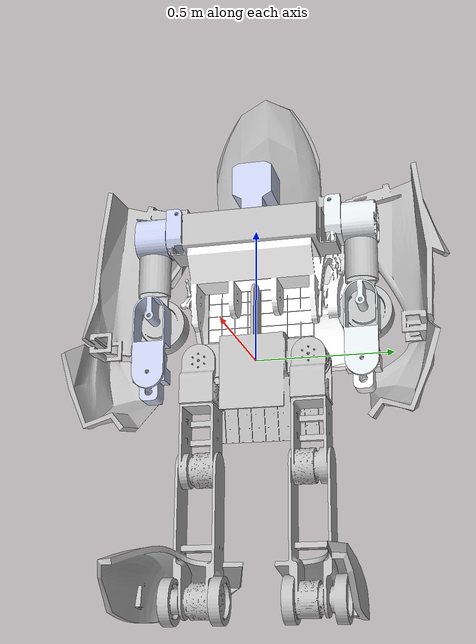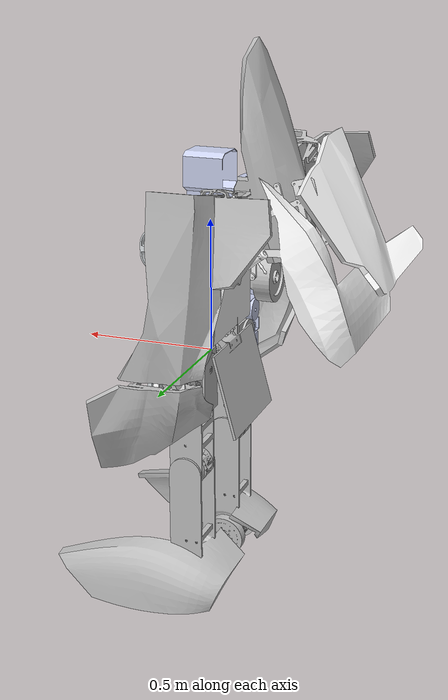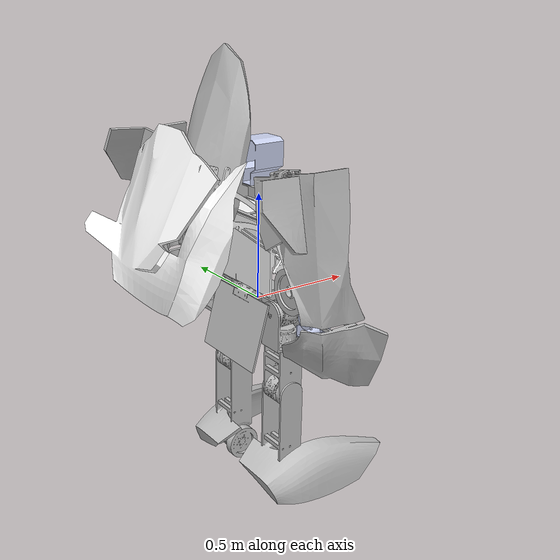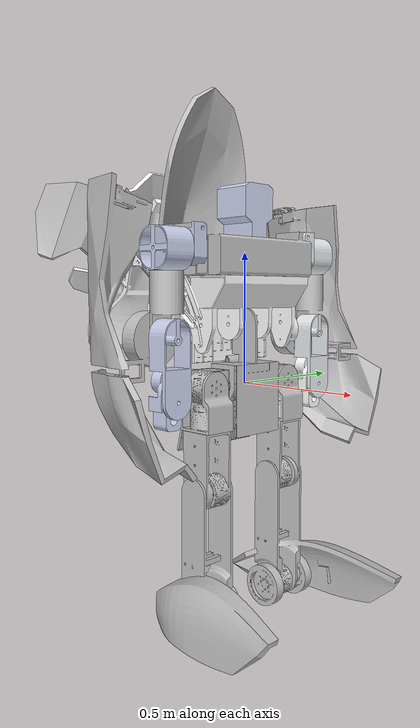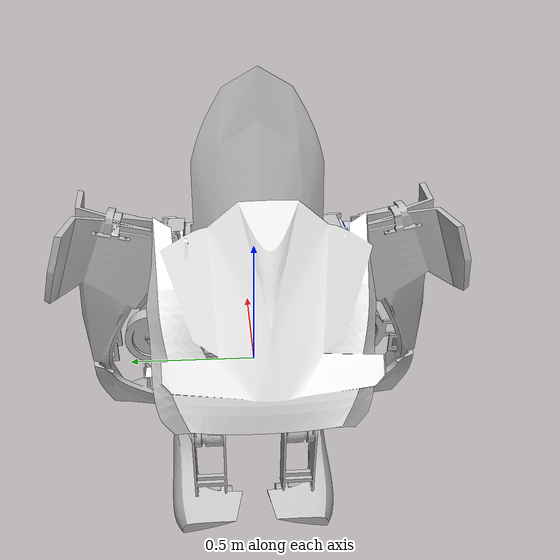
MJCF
<?xml version='1.0' encoding='UTF-8'?>
<mujoco model="u20">
  <compiler angle="radian" meshdir="../meshes/" autolimits="true" discardvisual="false"/>
  <default>
    <joint damping="0.5" armature="0.01" frictionloss="0.1"/>
    <geom group="3" contype="1" conaffinity="1"/>
  </default>
  <asset>
    <mesh name="base_link" content_type="model/stl" file="base_link.STL"/>
    <mesh name="lleg1_link" content_type="model/stl" file="lleg1_link.STL"/>
    <mesh name="lleg2_link" content_type="model/stl" file="lleg2_link.STL"/>
    <mesh name="lleg3_link" content_type="model/stl" file="lleg3_link.STL"/>
    <mesh name="lleg4_link" content_type="model/stl" file="lleg4_link.STL"/>
    <mesh name="lleg5_link" content_type="model/stl" file="lleg5_link.STL"/>
    <mesh name="rleg1_link" content_type="model/stl" file="rleg1_link.STL"/>
    <mesh name="rleg2_link" content_type="model/stl" file="rleg2_link.STL"/>
    <mesh name="rleg3_link" content_type="model/stl" file="rleg3_link.STL"/>
    <mesh name="rleg4_link" content_type="model/stl" file="rleg4_link.STL"/>
    <mesh name="rleg5_link" content_type="model/stl" file="rleg5_link.STL"/>
    <mesh name="waist1_link" content_type="model/stl" file="waist1_link.STL"/>
    <mesh name="waist2_link" content_type="model/stl" file="waist2_link.STL"/>
    <mesh name="head_link" content_type="model/stl" file="head_link.STL"/>
    <mesh name="larm1_link" content_type="model/stl" file="larm1_link.STL"/>
    <mesh name="larm2_link" content_type="model/stl" file="larm2_link.STL"/>
    <mesh name="larm3_link" content_type="model/stl" file="larm3_link.STL"/>
    <mesh name="larm4_link" content_type="model/stl" file="larm4_link.STL"/>
    <mesh name="larm5_link" content_type="model/stl" file="larm5_link.STL"/>
    <mesh name="larm6_link" content_type="model/stl" file="larm6_link.STL"/>
    <mesh name="rarm1_link" content_type="model/stl" file="rarm1_link.STL"/>
    <mesh name="rarm2_link" content_type="model/stl" file="rarm2_link.STL"/>
    <mesh name="rarm3_link" content_type="model/stl" file="rarm3_link.STL"/>
    <mesh name="rarm4_link" content_type="model/stl" file="rarm4_link.STL"/>
    <mesh name="rarm5_link" content_type="model/stl" file="rarm5_link.STL"/>
    <mesh name="rarm6_link" content_type="model/stl" file="rarm6_link.STL"/>
  </asset>
  <worldbody>
    <body name="base_link">
      <inertial pos="-0.0094 0 0.0157" quat="0.699653 0.699653 -0.1024 0.1024" mass="7.5069" diaginertia="0.095222 0.062078 0.0597"/>
      <joint name="floating_base_joint" type="free" limited="false" actuatorfrclimited="false"/>
      <geom type="mesh" contype="0" conaffinity="0" group="1" density="0" rgba="0.75294 0.75294 0.75294 1" mesh="base_link"/>
      <geom size="0.075 0.125 0.05" type="box" rgba="0.75294 0.75294 0.75294 1"/>
      <site name="imu" size="0.01" pos="0 0 0"/>
      <body name="left_hip_pitch_link" pos="0 0.12 0">
        <inertial pos="-0.002 0.0686 0" quat="0.466387 0.531491 -0.466387 0.531491" mass="2.9727" diaginertia="0.0042 0.00412621 0.00257379"/>
        <joint name="left_hip_pitch_joint" pos="0 0 0" axis="0 1 0" range="-1.4 1.4" actuatorfrcrange="-200 200"/>
        <geom type="mesh" contype="0" conaffinity="0" group="1" density="0" rgba="0.752941 0.752941 0.752941 1" mesh="lleg1_link"/>
        <body name="left_hip_roll_link" pos="0 0.081 0">
          <inertial pos="0.0005 0 -0.0962" quat="0.705299 0.0505241 0.0505241 0.705299" mass="4.1429" diaginertia="0.0187 0.013772 0.010228"/>
          <joint name="left_hip_roll_joint" pos="0 0 0" axis="1 0 0" range="-0.05 1.4" actuatorfrcrange="-200 200"/>
          <geom type="mesh" contype="0" conaffinity="0" group="1" density="0" rgba="0.752941 0.752941 0.752941 1" mesh="lleg2_link"/>
          <geom size="0.06" rgba="0.752941 0.752941 0.752941 1"/>
          <body name="left_hip_yaw_link" pos="0.001 0 -0.16">
            <inertial pos="-0.0009 -0.0016 -0.1771" quat="0.999941 0.00888636 0.00613785 -0.000736512" mass="5.0688" diaginertia="0.0448049 0.0403089 0.0121862"/>
            <joint name="left_hip_yaw_joint" pos="0 0 0" axis="0 0 1" range="-0.5 0.5" actuatorfrcrange="-200 200"/>
            <geom type="mesh" contype="0" conaffinity="0" group="1" density="0" rgba="0.752941 0.752941 0.752941 1" mesh="lleg3_link"/>
            <geom size="0.05 0.04" pos="0 0 -0.05" type="capsule" rgba="0.752941 0.752941 0.752941 1"/>
            <body name="left_knee_link" pos="0 0 -0.231">
              <inertial pos="0.0068 0.0062 -0.3113" quat="0.933301 -0.0101985 0.0160484 0.358591" mass="6.9416" diaginertia="0.207974 0.187249 0.0534778"/>
              <joint name="left_knee_joint" pos="0 0 0" axis="0 1 0" range="-0.1 2.3" actuatorfrcrange="-200 200"/>
              <geom type="mesh" contype="0" conaffinity="0" group="1" density="0" rgba="0.752941 0.752941 0.752941 1" mesh="lleg4_link"/>
              <geom size="0.05 0.14" pos="0 0 -0.16" type="capsule" rgba="0.752941 0.752941 0.752941 1"/>
              <body name="left_foot_link" pos="0 0 -0.45">
                <inertial pos="0 0.017 0" quat="0.707107 0.707107 0 0" mass="7.7653" diaginertia="0.075 0.075 0.0327"/>
                <geom type="mesh" contype="0" conaffinity="0" group="1" density="0" rgba="0.752941 0.752941 0.752941 1" mesh="lleg5_link"/>
                <geom name="left_foot1f_collision" size="0.012 0.033379" pos="0.085 0.067 0" quat="0.707107 0.707107 0 0" type="capsule" priority="1" friction="0.6 0.005 0.0001" rgba="0.2 0.2 0.2 1"/>
                <geom name="left_foot2f_collision" size="0.012 0.033379" pos="0.060104 0.067 0.060104" quat="0.707107 0.707107 0 0" type="capsule" priority="1" friction="0.6 0.005 0.0001" rgba="0.2 0.2 0.2 1"/>
                <geom name="left_foot3f_collision" size="0.012 0.033379" pos="0 0.067 0.085" quat="0.707107 0.707107 0 0" type="capsule" priority="1" friction="0.6 0.005 0.0001" rgba="0.2 0.2 0.2 1"/>
                <geom name="left_foot4f_collision" size="0.012 0.033379" pos="-0.060104 0.067 0.060104" quat="0.707107 0.707107 0 0" type="capsule" priority="1" friction="0.6 0.005 0.0001" rgba="0.2 0.2 0.2 1"/>
                <geom name="left_foot5f_collision" size="0.012 0.033379" pos="-0.085 0.067 0" quat="0.707107 0.707107 0 0" type="capsule" priority="1" friction="0.6 0.005 0.0001" rgba="0.2 0.2 0.2 1"/>
                <geom name="left_foot6f_collision" size="0.012 0.033379" pos="-0.060104 0.067 -0.060104" quat="0.707107 0.707107 0 0" type="capsule" priority="1" friction="0.6 0.005 0.0001" rgba="0.2 0.2 0.2 1"/>
                <geom name="left_foot7f_collision" size="0.012 0.033379" pos="0 0.067 -0.085" quat="0.707107 0.707107 0 0" type="capsule" priority="1" friction="0.6 0.005 0.0001" rgba="0.2 0.2 0.2 1"/>
                <geom name="left_foot8f_collision" size="0.012 0.033379" pos="0.060104 0.067 -0.060104" quat="0.707107 0.707107 0 0" type="capsule" priority="1" friction="0.6 0.005 0.0001" rgba="0.2 0.2 0.2 1"/>
                <geom name="left_foot1b2_collision" size="0.012 0.033379" pos="0.285 -0.033 0" quat="0.707107 0.707107 0 0" type="capsule" priority="1" friction="0.6 0.005 0.0001" rgba="0.2 0.2 0.2 1"/>
                <geom name="left_foot2b2_collision" size="0.012 0.033379" pos="0.260104 -0.033 0.060104" quat="0.707107 0.707107 0 0" type="capsule" priority="1" friction="0.6 0.005 0.0001" rgba="0.2 0.2 0.2 1"/>
                <geom name="left_foot3b2_collision" size="0.012 0.033379" pos="0.2 -0.033 0.085" quat="0.707107 0.707107 0 0" type="capsule" priority="1" friction="0.6 0.005 0.0001" rgba="0.2 0.2 0.2 1"/>
                <geom name="left_foot4b2_collision" size="0.012 0.033379" pos="0.139896 -0.033 0.060104" quat="0.707107 0.707107 0 0" type="capsule" priority="1" friction="0.6 0.005 0.0001" rgba="0.2 0.2 0.2 1"/>
                <geom name="left_foot5b2_collision" size="0.012 0.033379" pos="0.115 -0.033 0" quat="0.707107 0.707107 0 0" type="capsule" priority="1" friction="0.6 0.005 0.0001" rgba="0.2 0.2 0.2 1"/>
                <geom name="left_foot6b2_collision" size="0.012 0.033379" pos="0.139896 -0.033 -0.060104" quat="0.707107 0.707107 0 0" type="capsule" priority="1" friction="0.6 0.005 0.0001" rgba="0.2 0.2 0.2 1"/>
                <geom name="left_foot7b2_collision" size="0.012 0.033379" pos="0.2 -0.033 -0.085" quat="0.707107 0.707107 0 0" type="capsule" priority="1" friction="0.6 0.005 0.0001" rgba="0.2 0.2 0.2 1"/>
                <geom name="left_foot8b2_collision" size="0.012 0.033379" pos="0.260104 -0.033 -0.060104" quat="0.707107 0.707107 0 0" type="capsule" priority="1" friction="0.6 0.005 0.0001" rgba="0.2 0.2 0.2 1"/>
                <body name="LL_FOOT" pos="0.04 0 0">
                  <inertial pos="0 0 0" mass="1e-09" diaginertia="0 0 0"/>
                </body>
                <site name="left_foot" pos="0.04 0 0" size="0.01" rgba="1 0 0 1"/>
              </body>
            </body>
          </body>
        </body>
      </body>
      <body name="right_hip_pitch_link" pos="0 -0.12 0">
        <inertial pos="-0.002 -0.0686 0" quat="0.706662 0.706662 -0.0250788 -0.0250788" mass="2.9727" diaginertia="0.00931421 0.0082 0.00648579"/>
        <joint name="right_hip_pitch_joint" pos="0 0 0" axis="0 1 0" range="-1.4 1.4" actuatorfrcrange="-200 200"/>
        <geom type="mesh" contype="0" conaffinity="0" group="1" density="0" rgba="0.752941 0.752941 0.752941 1" mesh="rleg1_link"/>
        <body name="right_hip_roll_link" pos="0 -0.081 0">
          <inertial pos="0.0005 0 -0.0962" quat="0.703089 0.0752749 0.0752749 0.703089" mass="4.1429" diaginertia="0.0227 0.0178083 0.0153917"/>
          <joint name="right_hip_roll_joint" pos="0 0 0" axis="1 0 0" range="-1.4 0.05" actuatorfrcrange="-200 200"/>
          <geom type="mesh" contype="0" conaffinity="0" group="1" density="0" rgba="0.752941 0.752941 0.752941 1" mesh="rleg2_link"/>
          <geom size="0.06" rgba="0.752941 0.752941 0.752941 1"/>
          <body name="right_hip_yaw_link" pos="0.001 0 -0.16">
            <inertial pos="-0.0009 0.0016 -0.1771" quat="0.999944 -0.00852107 0.00613981 0.000982476" mass="5.0688" diaginertia="0.0488049 0.0455085 0.0161866"/>
            <joint name="right_hip_yaw_joint" pos="0 0 0" axis="0 0 1" range="-0.5 0.5" actuatorfrcrange="-200 200"/>
            <geom type="mesh" contype="0" conaffinity="0" group="1" density="0" rgba="0.752941 0.752941 0.752941 1" mesh="rleg3_link"/>
            <geom size="0.05 0.04" pos="0 0 -0.05" type="capsule" rgba="0.752941 0.752941 0.752941 1"/>
            <body name="right_knee_link" pos="0 0 -0.231">
              <inertial pos="0.0068 -0.0062 -0.3113" quat="0.927572 0.00982088 0.0161746 -0.373165" mass="6.9416" diaginertia="0.212476 0.191845 0.0574789"/>
              <joint name="right_knee_joint" pos="0 0 0" axis="0 1 0" range="-0.1 2.3" actuatorfrcrange="-200 200"/>
              <geom type="mesh" contype="0" conaffinity="0" group="1" density="0" rgba="0.752941 0.752941 0.752941 1" mesh="rleg4_link"/>
              <geom size="0.05 0.14" pos="0 0 -0.16" type="capsule" rgba="0.752941 0.752941 0.752941 1"/>
              <body name="right_foot_link" pos="0 0 -0.45">
                <inertial pos="0 -0.017 0" quat="0.707107 0.707107 0 0" mass="7.7653" diaginertia="0.075 0.075 0.0327"/>
                <geom type="mesh" contype="0" conaffinity="0" group="1" density="0" rgba="0.752941 0.752941 0.752941 1" mesh="rleg5_link"/>
                <geom name="right_foot1b_collision" size="0.012 0.033379" pos="0.085 -0.067 0" quat="0.707107 0.707107 0 0" type="capsule" priority="1" friction="0.6 0.005 0.0001" rgba="0.2 0.2 0.2 1"/>
                <geom name="right_foot2b_collision" size="0.012 0.033379" pos="0.060104 -0.067 0.060104" quat="0.707107 0.707107 0 0" type="capsule" priority="1" friction="0.6 0.005 0.0001" rgba="0.2 0.2 0.2 1"/>
                <geom name="right_foot3b_collision" size="0.012 0.033379" pos="0 -0.067 0.085" quat="0.707107 0.707107 0 0" type="capsule" priority="1" friction="0.6 0.005 0.0001" rgba="0.2 0.2 0.2 1"/>
                <geom name="right_foot4b_collision" size="0.012 0.033379" pos="-0.060104 -0.067 0.060104" quat="0.707107 0.707107 0 0" type="capsule" priority="1" friction="0.6 0.005 0.0001" rgba="0.2 0.2 0.2 1"/>
                <geom name="right_foot5b_collision" size="0.012 0.033379" pos="-0.085 -0.067 0" quat="0.707107 0.707107 0 0" type="capsule" priority="1" friction="0.6 0.005 0.0001" rgba="0.2 0.2 0.2 1"/>
                <geom name="right_foot6b_collision" size="0.012 0.033379" pos="-0.060104 -0.067 -0.060104" quat="0.707107 0.707107 0 0" type="capsule" priority="1" friction="0.6 0.005 0.0001" rgba="0.2 0.2 0.2 1"/>
                <geom name="right_foot7b_collision" size="0.012 0.033379" pos="0 -0.067 -0.085" quat="0.707107 0.707107 0 0" type="capsule" priority="1" friction="0.6 0.005 0.0001" rgba="0.2 0.2 0.2 1"/>
                <geom name="right_foot8b_collision" size="0.012 0.033379" pos="0.060104 -0.067 -0.060104" quat="0.707107 0.707107 0 0" type="capsule" priority="1" friction="0.6 0.005 0.0001" rgba="0.2 0.2 0.2 1"/>
                <geom name="right_foot1f2_collision" size="0.012 0.033379" pos="0.285 0.033 0" quat="0.707107 0.707107 0 0" type="capsule" priority="1" friction="0.6 0.005 0.0001" rgba="0.2 0.2 0.2 1"/>
                <geom name="right_foot2f2_collision" size="0.012 0.033379" pos="0.260104 0.033 0.060104" quat="0.707107 0.707107 0 0" type="capsule" priority="1" friction="0.6 0.005 0.0001" rgba="0.2 0.2 0.2 1"/>
                <geom name="right_foot3f2_collision" size="0.012 0.033379" pos="0.2 0.033 0.085" quat="0.707107 0.707107 0 0" type="capsule" priority="1" friction="0.6 0.005 0.0001" rgba="0.2 0.2 0.2 1"/>
                <geom name="right_foot4f2_collision" size="0.012 0.033379" pos="0.139896 0.033 0.060104" quat="0.707107 0.707107 0 0" type="capsule" priority="1" friction="0.6 0.005 0.0001" rgba="0.2 0.2 0.2 1"/>
                <geom name="right_foot5f2_collision" size="0.012 0.033379" pos="0.115 0.033 0" quat="0.707107 0.707107 0 0" type="capsule" priority="1" friction="0.6 0.005 0.0001" rgba="0.2 0.2 0.2 1"/>
                <geom name="right_foot6f2_collision" size="0.012 0.033379" pos="0.139896 0.033 -0.060104" quat="0.707107 0.707107 0 0" type="capsule" priority="1" friction="0.6 0.005 0.0001" rgba="0.2 0.2 0.2 1"/>
                <geom name="right_foot7f2_collision" size="0.012 0.033379" pos="0.2 0.033 -0.085" quat="0.707107 0.707107 0 0" type="capsule" priority="1" friction="0.6 0.005 0.0001" rgba="0.2 0.2 0.2 1"/>
                <geom name="right_foot8f2_collision" size="0.012 0.033379" pos="0.260104 0.033 -0.060104" quat="0.707107 0.707107 0 0" type="capsule" priority="1" friction="0.6 0.005 0.0001" rgba="0.2 0.2 0.2 1"/>
                <body name="LR_FOOT" pos="0.04 0 0">
                  <inertial pos="0 0 0" mass="1e-09" diaginertia="0 0 0"/>
                </body>
                <site name="right_foot" pos="0.04 0 0" size="0.01" rgba="1 0 0 1"/>
              </body>
            </body>
          </body>
        </body>
      </body>
      <body name="waist_yaw_link" pos="0 0 0.23">
        <inertial pos="-0.1579 -0.0033 0.142" quat="-0.0172833 0.494551 -0.0208592 0.868727" mass="11.8463" diaginertia="1.10806 0.972064 0.663273"/>
        <joint name="waist_yaw_joint" pos="0 0 0" axis="0 1 0" range="-1.57 1.57" actuatorfrcrange="-200 200"/>
        <geom type="mesh" contype="0" conaffinity="0" group="1" density="0" rgba="1 1 1 1" mesh="waist1_link"/>
        <geom size="0.15 0.2 0.075" type="box" rgba="1 1 1 1"/>
        <body name="waist_roll_link" pos="0 0 0.18">
          <inertial pos="-0.0016 0 0.1227" quat="0.292741 0.292741 -0.643664 0.643664" mass="6.6034" diaginertia="0.458632 0.355068 0.1988"/>
          <joint name="waist_roll_joint" pos="0 0 0" axis="0 0 1" range="-1.57 1.57" actuatorfrcrange="-200 200"/>
          <geom type="mesh" contype="0" conaffinity="0" group="1" density="0" rgba="0.752941 0.752941 0.752941 1" mesh="waist2_link"/>
          <geom size="0.1 0.15 0.1" type="box" rgba="0.752941 0.752941 0.752941 1"/>
          <body name="head_link" pos="0 0 0.1435">
            <inertial pos="0.0313 0 0.1081" quat="0.998989 0 -0.0449482 0" mass="0.5958" diaginertia="0.00380902 0.0037 0.00269098"/>
            <geom type="mesh" contype="0" conaffinity="0" group="1" density="0" rgba="0.796078 0.823529 0.937255 1" mesh="head_link"/>
            <geom size="0.1" pos="0 0 0.1435" rgba="0.796078 0.823529 0.937255 1"/>
          </body>
          <body name="left_shoulder_roll_link" pos="0 0.29 0.1615">
            <inertial pos="0 0.02 -0.0703" quat="0.514422 0.485149 0.514422 0.485149" mass="1.3714" diaginertia="0.00560586 0.00389414 0.0023"/>
            <joint name="left_shoulder_roll_joint" pos="0 0 0" axis="1 0 0" range="0 2.6" actuatorfrcrange="-200 200"/>
            <geom type="mesh" contype="0" conaffinity="0" group="1" density="0" rgba="0.898039 0.917647 0.929412 1" mesh="larm1_link"/>
            <body name="left_shoulder_pitch_link" pos="0 0.101 -0.07">
              <inertial pos="0 0 0" quat="0.5 0.5 0.5 0.5" mass="2.3741" diaginertia="0.0074 0.0067 0.0066"/>
              <joint name="left_shoulder_pitch_joint" pos="0 0 0" axis="0 1 0" range="-1.57 0.8" actuatorfrcrange="-200 200"/>
              <geom type="mesh" contype="0" conaffinity="0" group="1" density="0" rgba="0.898039 0.917647 0.929412 1" mesh="larm2_link"/>
              <geom size="0.08 0.025" quat="0.707388 0.706825 0 0" type="capsule" rgba="0.898039 0.917647 0.929412 1"/>
              <body name="left_shoulder_yaw_link" pos="0 0 -0.0775">
                <inertial pos="-0.0902 0.0496 -0.137" quat="0.977322 -0.00584699 0.14141 -0.157513" mass="8.4889" diaginertia="0.508446 0.473792 0.0977621"/>
                <joint name="left_shoulder_yaw_joint" pos="0 0 0" axis="0 0 1" range="-3.14 3.14" actuatorfrcrange="-200 200"/>
                <geom type="mesh" contype="0" conaffinity="0" group="1" density="0" rgba="0.752941 0.752941 0.752941 1" mesh="larm3_link"/>
                <body name="left_elbow_link" pos="0 0 -0.24">
                  <inertial pos="0.0318 0 -0.08" quat="0.997347 0 0.0727997 0" mass="1.7898" diaginertia="0.0217963 0.0203 0.00300372"/>
                  <joint name="left_elbow_joint" pos="0 0 0" axis="1 0 0" range="-1.57 1.57" actuatorfrcrange="-200 200"/>
                  <geom type="mesh" contype="0" conaffinity="0" group="1" density="0" rgba="0.898039 0.917647 0.929412 1" mesh="larm4_link"/>
                  <geom size="0.07 0.15" type="capsule" rgba="0.898039 0.917647 0.929412 1"/>
                  <body name="left_wrist_pitch_link" pos="0 0 -0.215">
                    <inertial pos="-0.0026 0 0.0447" quat="0.998125 0 0.0612064 0" mass="1.1747" diaginertia="0.00302462 0.0026 0.00137538"/>
                    <joint name="left_wrist_pitch_joint" pos="0 0 0" axis="1 0 0" range="-3.14 3.14" actuatorfrcrange="-200 200"/>
                    <geom type="mesh" contype="0" conaffinity="0" group="1" density="0" rgba="1 1 1 1" mesh="larm5_link"/>
                    <body name="left_wrist_yaw_link" pos="-0.0005 0 -0.032">
                      <inertial pos="0 0 -0.034" mass="0.6447" diaginertia="0.0006 0.0006 0.0006"/>
                      <joint name="left_wrist_yaw_joint" pos="0 0 0" axis="0 0 1" range="-3.14 3.14" actuatorfrcrange="-200 200"/>
                      <geom type="mesh" contype="0" conaffinity="0" group="1" density="0" rgba="1 1 1 1" mesh="larm6_link"/>
                      <geom size="0.03" pos="0 0 -0.05" rgba="1 1 1 1"/>
                    </body>
                  </body>
                </body>
              </body>
            </body>
          </body>
          <body name="right_shoulder_roll_link" pos="0 -0.29 0.1615">
            <inertial pos="0 -0.02 -0.0703" quat="0.485149 0.514422 0.485149 0.514422" mass="1.3714" diaginertia="0.00560586 0.00389414 0.0023"/>
            <joint name="right_shoulder_roll_joint" pos="0 0 0" axis="1 0 0" range="-2.6 0" actuatorfrcrange="-200 200"/>
            <geom type="mesh" contype="0" conaffinity="0" group="1" density="0" rgba="0.792157 0.819608 0.933333 1" mesh="rarm1_link"/>
            <body name="right_shoulder_pitch_link" pos="0 -0.101 -0.07">
              <inertial pos="0 0 0" quat="0.5 0.5 0.5 0.5" mass="2.3741" diaginertia="0.0074 0.0067 0.0066"/>
              <joint name="right_shoulder_pitch_joint" pos="0 0 0" axis="0 1 0" range="-1.57 0.8" actuatorfrcrange="-200 200"/>
              <geom type="mesh" contype="0" conaffinity="0" group="1" density="0" rgba="0.792157 0.819608 0.933333 1" mesh="rarm2_link"/>
              <geom size="0.08 0.025" quat="0.707388 0.706825 0 0" type="capsule" rgba="0.792157 0.819608 0.933333 1"/>
              <body name="right_shoulder_yaw_link" pos="0 0 -0.0775">
                <inertial pos="-0.0902 -0.0496 -0.137" quat="0.977322 0.00584699 0.14141 0.157513" mass="8.4889" diaginertia="0.508446 0.473792 0.0977621"/>
                <joint name="right_shoulder_yaw_joint" pos="0 0 0" axis="0 0 1" range="-3.14 3.14" actuatorfrcrange="-200 200"/>
                <geom type="mesh" contype="0" conaffinity="0" group="1" density="0" rgba="0.752941 0.752941 0.752941 1" mesh="rarm3_link"/>
                <body name="right_elbow_link" pos="0 0 -0.24">
                  <inertial pos="0.0318 0 -0.08" quat="0.997347 0 0.0727997 0" mass="1.7898" diaginertia="0.0217963 0.0203 0.00300372"/>
                  <joint name="right_elbow_joint" pos="0 0 0" axis="1 0 0" range="-1.57 1.57" actuatorfrcrange="-200 200"/>
                  <geom type="mesh" contype="0" conaffinity="0" group="1" density="0" rgba="0.792157 0.819608 0.933333 1" mesh="rarm4_link"/>
                  <geom size="0.07 0.15" type="capsule" rgba="0.792157 0.819608 0.933333 1"/>
                  <body name="right_wrist_pitch_link" pos="0 0 -0.215">
                    <inertial pos="-0.0026 0 0.0447" quat="0.998125 0 0.0612064 0" mass="1.1747" diaginertia="0.00302462 0.0026 0.00137538"/>
                    <joint name="right_wrist_pitch_joint" pos="0 0 0" axis="1 0 0" range="-3.14 3.14" actuatorfrcrange="-200 200"/>
                    <geom type="mesh" contype="0" conaffinity="0" group="1" density="0" rgba="0.792157 0.819608 0.933333 1" mesh="rarm5_link"/>
                    <body name="right_wrist_yaw_link" pos="-0.0005 0 -0.032">
                      <inertial pos="0 0 -0.034" mass="0.6447" diaginertia="0.0006 0.0006 0.0006"/>
                      <joint name="right_wrist_yaw_joint" pos="0 0 0" axis="0 0 1" range="-3.14 3.14" actuatorfrcrange="-200 200"/>
                      <geom type="mesh" contype="0" conaffinity="0" group="1" density="0" rgba="0.792157 0.819608 0.933333 1" mesh="rarm6_link"/>
                      <geom size="0.03" pos="0 0 -0.05" rgba="0.792157 0.819608 0.933333 1"/>
                    </body>
                  </body>
                </body>
              </body>
            </body>
          </body>
        </body>  <!-- end waist_roll_link -->
        <body name="imu_link" pos="-0.09835 0 -0.052"/>
      </body>  <!-- end waist_yaw_link -->
    </body>  <!-- end base_link -->
  </worldbody>
  <contact>
    <exclude body1="left_shoulder_yaw_link" body2="left_wrist_pitch_link"/>
    <exclude body1="right_shoulder_yaw_link" body2="right_wrist_pitch_link"/>
    <exclude body1="base_link" body2="left_hip_pitch_link"/>
    <exclude body1="base_link" body2="right_hip_pitch_link"/>
  </contact>
  <sensor>
    <framequat name="orientation" objtype="site" objname="imu"/>
    <framepos name="position" objtype="site" objname="imu"/>
    <gyro name="imu_ang_vel" site="imu"/>
    <velocimeter name="imu_lin_vel" site="imu"/>
    <accelerometer name="imu_lin_acc" site="imu"/>
    <subtreeangmom name="root_angmom" body="base_link"/>
  </sensor>
</mujoco>
